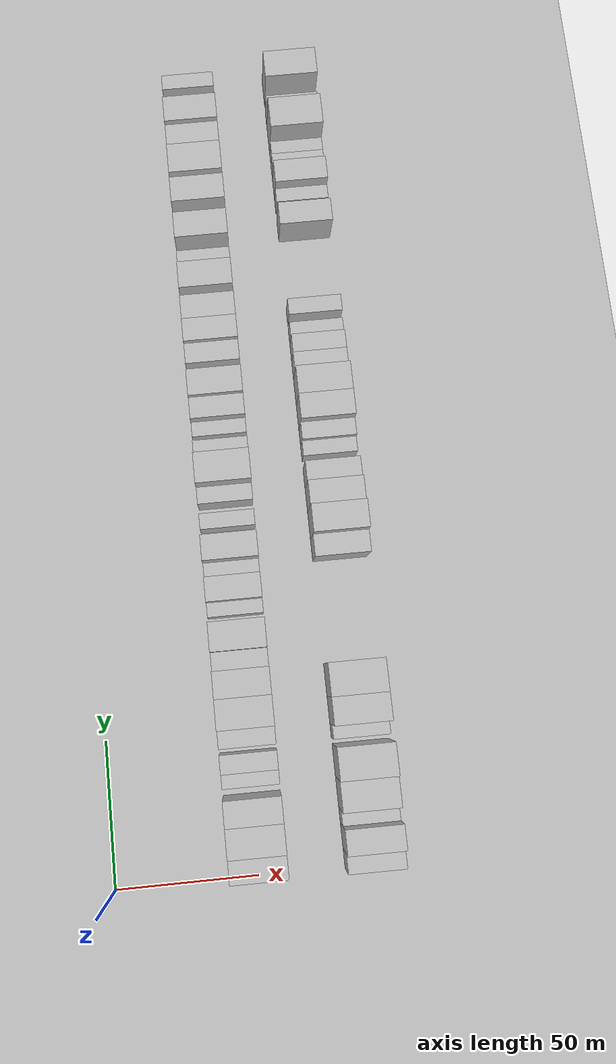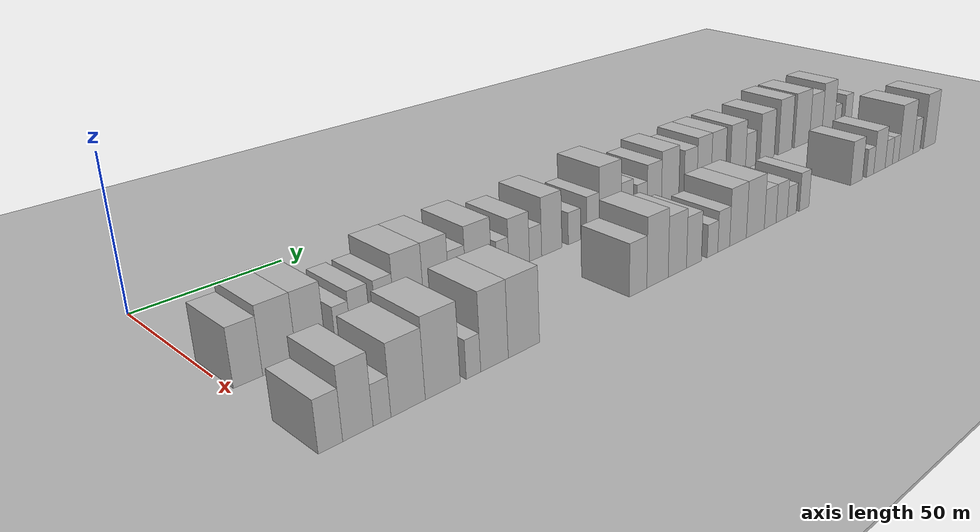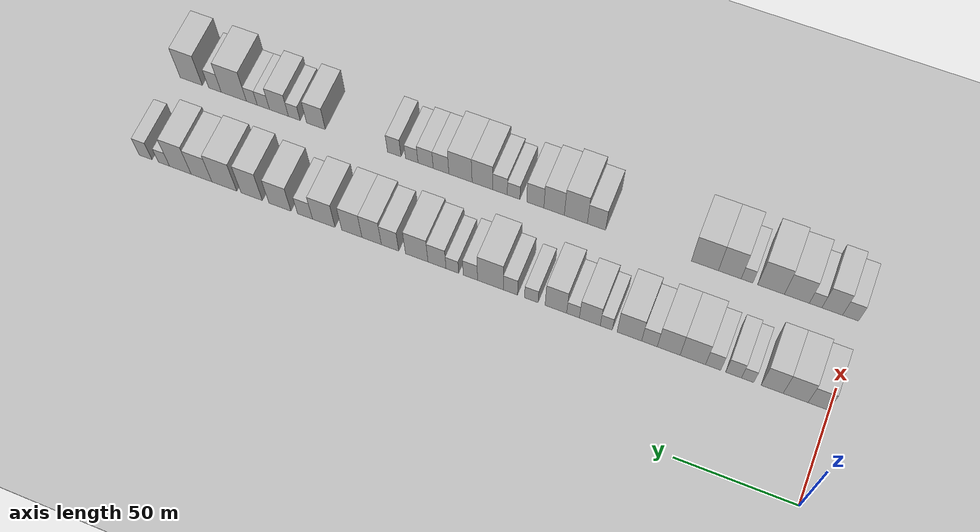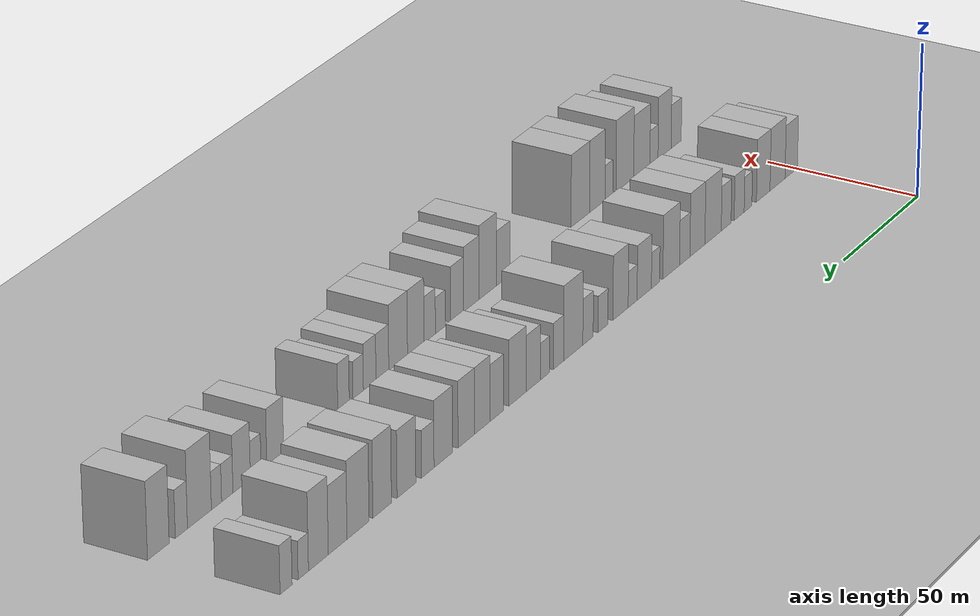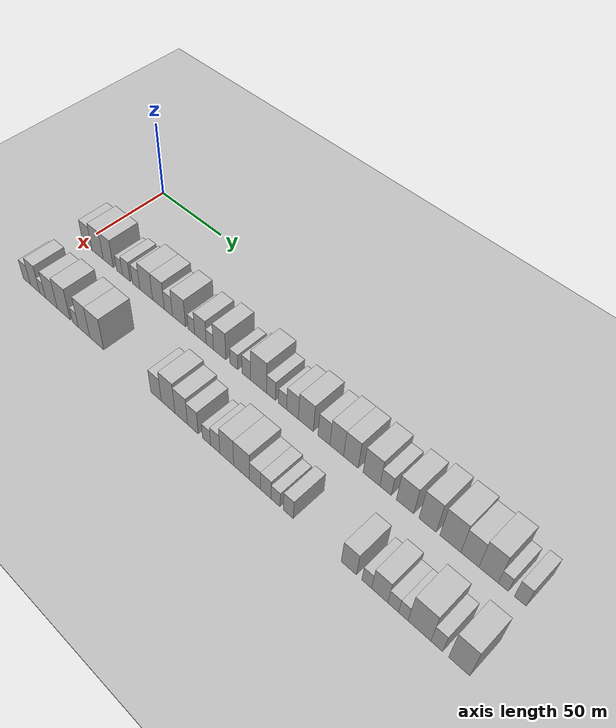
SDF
<sdf version="1.6">
 <world name="default">
  <include><name>ground_plane_1</name><uri>model://HANNAS_ground_plane</uri></include>
  <include>
   <name>ground_plane_2</name>
   <uri>model://HANNAS_ground_plane</uri>
   <pose>100 0 0  0 0 0</pose>
  </include>
  <model name="building_34">
   <static>1</static>
   <pose>50.0000 4.6034 0 0.000000 0.000000 0.000000</pose>
   <link name="link">
    <pose>0 0 9.00 0 0 0</pose>
    <collision name="collision"><geometry><box><size>20.0000 8.2765 18.0000</size></box></geometry></collision>
    <visual name="visual">
     <cast_shadows>0</cast_shadows>
     <geometry><box><size>20.0000 8.2765 18.0000</size></box></geometry>
     <material>
      <script>
       <uri>model://HANNAS_wall/materials/scripts</uri>
       <uri>model://HANNAS_wall/materials/textures</uri>
       <name>vrc/HANNAS_wall</name>
      </script>
     </material>
    </visual>
   </link>
  </model>
  <model name="building_35">
   <static>1</static>
   <pose>50.0000 13.7595 0 0.000000 0.000000 0.000000</pose>
   <link name="link">
    <pose>0 0 10.50 0 0 0</pose>
    <collision name="collision"><geometry><box><size>20.0000 10.0357 21.0000</size></box></geometry></collision>
    <visual name="visual">
     <cast_shadows>0</cast_shadows>
     <geometry><box><size>20.0000 10.0357 21.0000</size></box></geometry>
     <material>
      <script>
       <uri>model://HANNAS_wall/materials/scripts</uri>
       <uri>model://HANNAS_wall/materials/textures</uri>
       <name>vrc/HANNAS_wall</name>
      </script>
     </material>
    </visual>
   </link>
  </model>
  <model name="building_36">
   <static>1</static>
   <pose>50.0000 23.2460 0 0.000000 0.000000 0.000000</pose>
   <link name="link">
    <pose>0 0 10.50 0 0 0</pose>
    <collision name="collision"><geometry><box><size>20.0000 8.9372 21.0000</size></box></geometry></collision>
    <visual name="visual">
     <cast_shadows>0</cast_shadows>
     <geometry><box><size>20.0000 8.9372 21.0000</size></box></geometry>
     <material>
      <script>
       <uri>model://HANNAS_wall/materials/scripts</uri>
       <uri>model://HANNAS_wall/materials/textures</uri>
       <name>vrc/HANNAS_wall</name>
      </script>
     </material>
    </visual>
   </link>
  </model>
  <model name="building_37">
   <static>1</static>
   <pose>50.0000 33.2206 0 0.000000 0.000000 0.000000</pose>
   <link name="link">
    <pose>0 0 6.00 0 0 0</pose>
    <collision name="collision"><geometry><box><size>20.0000 5.0121 12.0000</size></box></geometry></collision>
    <visual name="visual">
     <cast_shadows>0</cast_shadows>
     <geometry><box><size>20.0000 5.0121 12.0000</size></box></geometry>
     <material>
      <script>
       <uri>model://HANNAS_wall/materials/scripts</uri>
       <uri>model://HANNAS_wall/materials/textures</uri>
       <name>vrc/HANNAS_wall</name>
      </script>
     </material>
    </visual>
   </link>
  </model>
  <model name="building_38">
   <static>1</static>
   <pose>50.0000 38.9742 0 0.000000 0.000000 0.000000</pose>
   <link name="link">
    <pose>0 0 7.50 0 0 0</pose>
    <collision name="collision"><geometry><box><size>20.0000 6.4951 15.0000</size></box></geometry></collision>
    <visual name="visual">
     <cast_shadows>0</cast_shadows>
     <geometry><box><size>20.0000 6.4951 15.0000</size></box></geometry>
     <material>
      <script>
       <uri>model://HANNAS_wall/materials/scripts</uri>
       <uri>model://HANNAS_wall/materials/textures</uri>
       <name>vrc/HANNAS_wall</name>
      </script>
     </material>
    </visual>
   </link>
  </model>
  <model name="building_39">
   <static>1</static>
   <pose>50.0000 47.3750 0 0.000000 0.000000 0.000000</pose>
   <link name="link">
    <pose>0 0 7.50 0 0 0</pose>
    <collision name="collision"><geometry><box><size>20.0000 6.3065 15.0000</size></box></geometry></collision>
    <visual name="visual">
     <cast_shadows>0</cast_shadows>
     <geometry><box><size>20.0000 6.3065 15.0000</size></box></geometry>
     <material>
      <script>
       <uri>model://HANNAS_wall/materials/scripts</uri>
       <uri>model://HANNAS_wall/materials/textures</uri>
       <name>vrc/HANNAS_wall</name>
      </script>
     </material>
    </visual>
   </link>
  </model>
  <model name="building_40">
   <static>1</static>
   <pose>50.0000 55.7754 0 0.000000 0.000000 0.000000</pose>
   <link name="link">
    <pose>0 0 10.50 0 0 0</pose>
    <collision name="collision"><geometry><box><size>20.0000 10.4942 21.0000</size></box></geometry></collision>
    <visual name="visual">
     <cast_shadows>0</cast_shadows>
     <geometry><box><size>20.0000 10.4942 21.0000</size></box></geometry>
     <material>
      <script>
       <uri>model://HANNAS_wall/materials/scripts</uri>
       <uri>model://HANNAS_wall/materials/textures</uri>
       <name>vrc/HANNAS_wall</name>
      </script>
     </material>
    </visual>
   </link>
  </model>
  <model name="building_41">
   <static>1</static>
   <pose>50.0000 65.7704 0 0.000000 0.000000 0.000000</pose>
   <link name="link">
    <pose>0 0 10.50 0 0 0</pose>
    <collision name="collision"><geometry><box><size>20.0000 9.4959 21.0000</size></box></geometry></collision>
    <visual name="visual">
     <cast_shadows>0</cast_shadows>
     <geometry><box><size>20.0000 9.4959 21.0000</size></box></geometry>
     <material>
      <script>
       <uri>model://HANNAS_wall/materials/scripts</uri>
       <uri>model://HANNAS_wall/materials/textures</uri>
       <name>vrc/HANNAS_wall</name>
      </script>
     </material>
    </visual>
   </link>
  </model>
  <model name="building_42">
   <static>1</static>
   <pose>50.0000 73.7756 0 0.000000 0.000000 0.000000</pose>
   <link name="link">
    <pose>0 0 7.50 0 0 0</pose>
    <collision name="collision"><geometry><box><size>20.0000 6.5145 15.0000</size></box></geometry></collision>
    <visual name="visual">
     <cast_shadows>0</cast_shadows>
     <geometry><box><size>20.0000 6.5145 15.0000</size></box></geometry>
     <material>
      <script>
       <uri>model://HANNAS_wall/materials/scripts</uri>
       <uri>model://HANNAS_wall/materials/textures</uri>
       <name>vrc/HANNAS_wall</name>
      </script>
     </material>
    </visual>
   </link>
  </model>
  <model name="building_43">
   <static>1</static>
   <pose>50.0000 82.2063 0 0.000000 0.000000 0.000000</pose>
   <link name="link">
    <pose>0 0 10.50 0 0 0</pose>
    <collision name="collision"><geometry><box><size>20.0000 10.3469 21.0000</size></box></geometry></collision>
    <visual name="visual">
     <cast_shadows>0</cast_shadows>
     <geometry><box><size>20.0000 10.3469 21.0000</size></box></geometry>
     <material>
      <script>
       <uri>model://HANNAS_wall/materials/scripts</uri>
       <uri>model://HANNAS_wall/materials/textures</uri>
       <name>vrc/HANNAS_wall</name>
      </script>
     </material>
    </visual>
   </link>
  </model>
  <model name="building_44">
   <static>1</static>
   <pose>50.0000 91.9267 0 0.000000 0.000000 0.000000</pose>
   <link name="link">
    <pose>0 0 6.00 0 0 0</pose>
    <collision name="collision"><geometry><box><size>20.0000 5.0939 12.0000</size></box></geometry></collision>
    <visual name="visual">
     <cast_shadows>0</cast_shadows>
     <geometry><box><size>20.0000 5.0939 12.0000</size></box></geometry>
     <material>
      <script>
       <uri>model://HANNAS_wall/materials/scripts</uri>
       <uri>model://HANNAS_wall/materials/textures</uri>
       <name>vrc/HANNAS_wall</name>
      </script>
     </material>
    </visual>
   </link>
  </model>
  <model name="building_45">
   <static>1</static>
   <pose>50.0000 98.8764 0 0.000000 0.000000 0.000000</pose>
   <link name="link">
    <pose>0 0 9.00 0 0 0</pose>
    <collision name="collision"><geometry><box><size>20.0000 8.8055 18.0000</size></box></geometry></collision>
    <visual name="visual">
     <cast_shadows>0</cast_shadows>
     <geometry><box><size>20.0000 8.8055 18.0000</size></box></geometry>
     <material>
      <script>
       <uri>model://HANNAS_wall/materials/scripts</uri>
       <uri>model://HANNAS_wall/materials/textures</uri>
       <name>vrc/HANNAS_wall</name>
      </script>
     </material>
    </visual>
   </link>
  </model>
  <model name="building_46">
   <static>1</static>
   <pose>50.0000 105.9861 0 0.000000 0.000000 0.000000</pose>
   <link name="link">
    <pose>0 0 6.00 0 0 0</pose>
    <collision name="collision"><geometry><box><size>20.0000 5.4139 12.0000</size></box></geometry></collision>
    <visual name="visual">
     <cast_shadows>0</cast_shadows>
     <geometry><box><size>20.0000 5.4139 12.0000</size></box></geometry>
     <material>
      <script>
       <uri>model://HANNAS_wall/materials/scripts</uri>
       <uri>model://HANNAS_wall/materials/textures</uri>
       <name>vrc/HANNAS_wall</name>
      </script>
     </material>
    </visual>
   </link>
  </model>
  <model name="building_47">
   <static>1</static>
   <pose>50.0000 113.2934 0 0.000000 0.000000 0.000000</pose>
   <link name="link">
    <pose>0 0 10.50 0 0 0</pose>
    <collision name="collision"><geometry><box><size>20.0000 9.2007 21.0000</size></box></geometry></collision>
    <visual name="visual">
     <cast_shadows>0</cast_shadows>
     <geometry><box><size>20.0000 9.2007 21.0000</size></box></geometry>
     <material>
      <script>
       <uri>model://HANNAS_wall/materials/scripts</uri>
       <uri>model://HANNAS_wall/materials/textures</uri>
       <name>vrc/HANNAS_wall</name>
      </script>
     </material>
    </visual>
   </link>
  </model>
  <model name="building_48">
   <static>1</static>
   <pose>50.0000 123.7985 0 0.000000 0.000000 0.000000</pose>
   <link name="link">
    <pose>0 0 6.00 0 0 0</pose>
    <collision name="collision"><geometry><box><size>20.0000 5.8095 12.0000</size></box></geometry></collision>
    <visual name="visual">
     <cast_shadows>0</cast_shadows>
     <geometry><box><size>20.0000 5.8095 12.0000</size></box></geometry>
     <material>
      <script>
       <uri>model://HANNAS_wall/materials/scripts</uri>
       <uri>model://HANNAS_wall/materials/textures</uri>
       <name>vrc/HANNAS_wall</name>
      </script>
     </material>
    </visual>
   </link>
  </model>
  <model name="building_49">
   <static>1</static>
   <pose>50.0000 132.7728 0 0.000000 0.000000 0.000000</pose>
   <link name="link">
    <pose>0 0 7.50 0 0 0</pose>
    <collision name="collision"><geometry><box><size>20.0000 6.1389 15.0000</size></box></geometry></collision>
    <visual name="visual">
     <cast_shadows>0</cast_shadows>
     <geometry><box><size>20.0000 6.1389 15.0000</size></box></geometry>
     <material>
      <script>
       <uri>model://HANNAS_wall/materials/scripts</uri>
       <uri>model://HANNAS_wall/materials/textures</uri>
       <name>vrc/HANNAS_wall</name>
      </script>
     </material>
    </visual>
   </link>
  </model>
  <model name="building_50">
   <static>1</static>
   <pose>50.0000 141.4170 0 0.000000 0.000000 0.000000</pose>
   <link name="link">
    <pose>0 0 12.00 0 0 0</pose>
    <collision name="collision"><geometry><box><size>20.0000 11.1495 24.0000</size></box></geometry></collision>
    <visual name="visual">
     <cast_shadows>0</cast_shadows>
     <geometry><box><size>20.0000 11.1495 24.0000</size></box></geometry>
     <material>
      <script>
       <uri>model://HANNAS_wall/materials/scripts</uri>
       <uri>model://HANNAS_wall/materials/textures</uri>
       <name>vrc/HANNAS_wall</name>
      </script>
     </material>
    </visual>
   </link>
  </model>
  <model name="building_51">
   <static>1</static>
   <pose>50.0000 150.1050 0 0.000000 0.000000 0.000000</pose>
   <link name="link">
    <pose>0 0 7.50 0 0 0</pose>
    <collision name="collision"><geometry><box><size>20.0000 6.2265 15.0000</size></box></geometry></collision>
    <visual name="visual">
     <cast_shadows>0</cast_shadows>
     <geometry><box><size>20.0000 6.2265 15.0000</size></box></geometry>
     <material>
      <script>
       <uri>model://HANNAS_wall/materials/scripts</uri>
       <uri>model://HANNAS_wall/materials/textures</uri>
       <name>vrc/HANNAS_wall</name>
      </script>
     </material>
    </visual>
   </link>
  </model>
  <model name="building_52">
   <static>1</static>
   <pose>50.0000 157.9779 0 0.000000 0.000000 0.000000</pose>
   <link name="link">
    <pose>0 0 6.00 0 0 0</pose>
    <collision name="collision"><geometry><box><size>20.0000 5.5194 12.0000</size></box></geometry></collision>
    <visual name="visual">
     <cast_shadows>0</cast_shadows>
     <geometry><box><size>20.0000 5.5194 12.0000</size></box></geometry>
     <material>
      <script>
       <uri>model://HANNAS_wall/materials/scripts</uri>
       <uri>model://HANNAS_wall/materials/textures</uri>
       <name>vrc/HANNAS_wall</name>
      </script>
     </material>
    </visual>
   </link>
  </model>
  <model name="building_53">
   <static>1</static>
   <pose>50.0000 164.7002 0 0.000000 0.000000 0.000000</pose>
   <link name="link">
    <pose>0 0 9.00 0 0 0</pose>
    <collision name="collision"><geometry><box><size>20.0000 7.9251 18.0000</size></box></geometry></collision>
    <visual name="visual">
     <cast_shadows>0</cast_shadows>
     <geometry><box><size>20.0000 7.9251 18.0000</size></box></geometry>
     <material>
      <script>
       <uri>model://HANNAS_wall/materials/scripts</uri>
       <uri>model://HANNAS_wall/materials/textures</uri>
       <name>vrc/HANNAS_wall</name>
      </script>
     </material>
    </visual>
   </link>
  </model>
  <model name="building_54">
   <static>1</static>
   <pose>50.0000 173.6147 0 0.000000 0.000000 0.000000</pose>
   <link name="link">
    <pose>0 0 10.50 0 0 0</pose>
    <collision name="collision"><geometry><box><size>20.0000 9.9040 21.0000</size></box></geometry></collision>
    <visual name="visual">
     <cast_shadows>0</cast_shadows>
     <geometry><box><size>20.0000 9.9040 21.0000</size></box></geometry>
     <material>
      <script>
       <uri>model://HANNAS_wall/materials/scripts</uri>
       <uri>model://HANNAS_wall/materials/textures</uri>
       <name>vrc/HANNAS_wall</name>
      </script>
     </material>
    </visual>
   </link>
  </model>
  <model name="building_55">
   <static>1</static>
   <pose>50.0000 185.4080 0 0.000000 0.000000 0.000000</pose>
   <link name="link">
    <pose>0 0 9.00 0 0 0</pose>
    <collision name="collision"><geometry><box><size>20.0000 7.6825 18.0000</size></box></geometry></collision>
    <visual name="visual">
     <cast_shadows>0</cast_shadows>
     <geometry><box><size>20.0000 7.6825 18.0000</size></box></geometry>
     <material>
      <script>
       <uri>model://HANNAS_wall/materials/scripts</uri>
       <uri>model://HANNAS_wall/materials/textures</uri>
       <name>vrc/HANNAS_wall</name>
      </script>
     </material>
    </visual>
   </link>
  </model>
  <model name="building_56">
   <static>1</static>
   <pose>50.0000 193.5839 0 0.000000 0.000000 0.000000</pose>
   <link name="link">
    <pose>0 0 10.50 0 0 0</pose>
    <collision name="collision"><geometry><box><size>20.0000 8.6694 21.0000</size></box></geometry></collision>
    <visual name="visual">
     <cast_shadows>0</cast_shadows>
     <geometry><box><size>20.0000 8.6694 21.0000</size></box></geometry>
     <material>
      <script>
       <uri>model://HANNAS_wall/materials/scripts</uri>
       <uri>model://HANNAS_wall/materials/textures</uri>
       <name>vrc/HANNAS_wall</name>
      </script>
     </material>
    </visual>
   </link>
  </model>
  <model name="building_57">
   <static>1</static>
   <pose>50.0000 202.4442 0 0.000000 0.000000 0.000000</pose>
   <link name="link">
    <pose>0 0 10.50 0 0 0</pose>
    <collision name="collision"><geometry><box><size>20.0000 9.0514 21.0000</size></box></geometry></collision>
    <visual name="visual">
     <cast_shadows>0</cast_shadows>
     <geometry><box><size>20.0000 9.0514 21.0000</size></box></geometry>
     <material>
      <script>
       <uri>model://HANNAS_wall/materials/scripts</uri>
       <uri>model://HANNAS_wall/materials/textures</uri>
       <name>vrc/HANNAS_wall</name>
      </script>
     </material>
    </visual>
   </link>
  </model>
  <model name="building_58">
   <static>1</static>
   <pose>50.0000 215.0470 0 0.000000 0.000000 0.000000</pose>
   <link name="link">
    <pose>0 0 10.50 0 0 0</pose>
    <collision name="collision"><geometry><box><size>20.0000 10.1541 21.0000</size></box></geometry></collision>
    <visual name="visual">
     <cast_shadows>0</cast_shadows>
     <geometry><box><size>20.0000 10.1541 21.0000</size></box></geometry>
     <material>
      <script>
       <uri>model://HANNAS_wall/materials/scripts</uri>
       <uri>model://HANNAS_wall/materials/textures</uri>
       <name>vrc/HANNAS_wall</name>
      </script>
     </material>
    </visual>
   </link>
  </model>
  <model name="building_59">
   <static>1</static>
   <pose>50.0000 223.5183 0 0.000000 0.000000 0.000000</pose>
   <link name="link">
    <pose>0 0 7.50 0 0 0</pose>
    <collision name="collision"><geometry><box><size>20.0000 6.7885 15.0000</size></box></geometry></collision>
    <visual name="visual">
     <cast_shadows>0</cast_shadows>
     <geometry><box><size>20.0000 6.7885 15.0000</size></box></geometry>
     <material>
      <script>
       <uri>model://HANNAS_wall/materials/scripts</uri>
       <uri>model://HANNAS_wall/materials/textures</uri>
       <name>vrc/HANNAS_wall</name>
      </script>
     </material>
    </visual>
   </link>
  </model>
  <model name="building_60">
   <static>1</static>
   <pose>50.0000 234.9215 0 0.000000 0.000000 0.000000</pose>
   <link name="link">
    <pose>0 0 10.50 0 0 0</pose>
    <collision name="collision"><geometry><box><size>20.0000 10.0179 21.0000</size></box></geometry></collision>
    <visual name="visual">
     <cast_shadows>0</cast_shadows>
     <geometry><box><size>20.0000 10.0179 21.0000</size></box></geometry>
     <material>
      <script>
       <uri>model://HANNAS_wall/materials/scripts</uri>
       <uri>model://HANNAS_wall/materials/textures</uri>
       <name>vrc/HANNAS_wall</name>
      </script>
     </material>
    </visual>
   </link>
  </model>
  <model name="building_61">
   <static>1</static>
   <pose>50.0000 247.8155 0 0.000000 0.000000 0.000000</pose>
   <link name="link">
    <pose>0 0 12.00 0 0 0</pose>
    <collision name="collision"><geometry><box><size>20.0000 9.7701 24.0000</size></box></geometry></collision>
    <visual name="visual">
     <cast_shadows>0</cast_shadows>
     <geometry><box><size>20.0000 9.7701 24.0000</size></box></geometry>
     <material>
      <script>
       <uri>model://HANNAS_wall/materials/scripts</uri>
       <uri>model://HANNAS_wall/materials/textures</uri>
       <name>vrc/HANNAS_wall</name>
      </script>
     </material>
    </visual>
   </link>
  </model>
  <model name="building_62">
   <static>1</static>
   <pose>50.0000 260.4190 0 0.000000 0.000000 0.000000</pose>
   <link name="link">
    <pose>0 0 12.00 0 0 0</pose>
    <collision name="collision"><geometry><box><size>20.0000 11.4369 24.0000</size></box></geometry></collision>
    <visual name="visual">
     <cast_shadows>0</cast_shadows>
     <geometry><box><size>20.0000 11.4369 24.0000</size></box></geometry>
     <material>
      <script>
       <uri>model://HANNAS_wall/materials/scripts</uri>
       <uri>model://HANNAS_wall/materials/textures</uri>
       <name>vrc/HANNAS_wall</name>
      </script>
     </material>
    </visual>
   </link>
  </model>
  <model name="building_63">
   <static>1</static>
   <pose>50.0000 270.9623 0 0.000000 0.000000 0.000000</pose>
   <link name="link">
    <pose>0 0 10.50 0 0 0</pose>
    <collision name="collision"><geometry><box><size>20.0000 9.6496 21.0000</size></box></geometry></collision>
    <visual name="visual">
     <cast_shadows>0</cast_shadows>
     <geometry><box><size>20.0000 9.6496 21.0000</size></box></geometry>
     <material>
      <script>
       <uri>model://HANNAS_wall/materials/scripts</uri>
       <uri>model://HANNAS_wall/materials/textures</uri>
       <name>vrc/HANNAS_wall</name>
      </script>
     </material>
    </visual>
   </link>
  </model>
  <model name="building_64">
   <static>1</static>
   <pose>50.0000 280.8365 0 0.000000 0.000000 0.000000</pose>
   <link name="link">
    <pose>0 0 12.00 0 0 0</pose>
    <collision name="collision"><geometry><box><size>20.0000 10.0986 24.0000</size></box></geometry></collision>
    <visual name="visual">
     <cast_shadows>0</cast_shadows>
     <geometry><box><size>20.0000 10.0986 24.0000</size></box></geometry>
     <material>
      <script>
       <uri>model://HANNAS_wall/materials/scripts</uri>
       <uri>model://HANNAS_wall/materials/textures</uri>
       <name>vrc/HANNAS_wall</name>
      </script>
     </material>
    </visual>
   </link>
  </model>
  <model name="building_65">
   <static>1</static>
   <pose>50.0000 288.4983 0 0.000000 0.000000 0.000000</pose>
   <link name="link">
    <pose>0 0 6.00 0 0 0</pose>
    <collision name="collision"><geometry><box><size>20.0000 5.2250 12.0000</size></box></geometry></collision>
    <visual name="visual">
     <cast_shadows>0</cast_shadows>
     <geometry><box><size>20.0000 5.2250 12.0000</size></box></geometry>
     <material>
      <script>
       <uri>model://HANNAS_wall/materials/scripts</uri>
       <uri>model://HANNAS_wall/materials/textures</uri>
       <name>vrc/HANNAS_wall</name>
      </script>
     </material>
    </visual>
   </link>
  </model>
  <model name="building_66">
   <static>1</static>
   <pose>50.0000 297.1267 0 0.000000 0.000000 0.000000</pose>
   <link name="link">
    <pose>0 0 7.50 0 0 0</pose>
    <collision name="collision"><geometry><box><size>20.0000 6.0318 15.0000</size></box></geometry></collision>
    <visual name="visual">
     <cast_shadows>0</cast_shadows>
     <geometry><box><size>20.0000 6.0318 15.0000</size></box></geometry>
     <material>
      <script>
       <uri>model://HANNAS_wall/materials/scripts</uri>
       <uri>model://HANNAS_wall/materials/textures</uri>
       <name>vrc/HANNAS_wall</name>
      </script>
     </material>
    </visual>
   </link>
  </model>
  <model name="building_96">
   <static>1</static>
   <pose>90.0000 3.0714 0 0.000000 0.000000 0.000000</pose>
   <link name="link">
    <pose>0 0 7.50 0 0 0</pose>
    <collision name="collision"><geometry><box><size>20.0000 6.6131 15.0000</size></box></geometry></collision>
    <visual name="visual">
     <cast_shadows>0</cast_shadows>
     <geometry><box><size>20.0000 6.6131 15.0000</size></box></geometry>
     <material>
      <script>
       <uri>model://HANNAS_wall/materials/scripts</uri>
       <uri>model://HANNAS_wall/materials/textures</uri>
       <name>vrc/HANNAS_wall</name>
      </script>
     </material>
    </visual>
   </link>
  </model>
  <model name="building_97">
   <static>1</static>
   <pose>90.0000 10.6447 0 0.000000 0.000000 0.000000</pose>
   <link name="link">
    <pose>0 0 10.50 0 0 0</pose>
    <collision name="collision"><geometry><box><size>20.0000 8.5336 21.0000</size></box></geometry></collision>
    <visual name="visual">
     <cast_shadows>0</cast_shadows>
     <geometry><box><size>20.0000 8.5336 21.0000</size></box></geometry>
     <material>
      <script>
       <uri>model://HANNAS_wall/materials/scripts</uri>
       <uri>model://HANNAS_wall/materials/textures</uri>
       <name>vrc/HANNAS_wall</name>
      </script>
     </material>
    </visual>
   </link>
  </model>
  <model name="building_98">
   <static>1</static>
   <pose>90.0000 17.5140 0 0.000000 0.000000 0.000000</pose>
   <link name="link">
    <pose>0 0 6.00 0 0 0</pose>
    <collision name="collision"><geometry><box><size>20.0000 5.2049 12.0000</size></box></geometry></collision>
    <visual name="visual">
     <cast_shadows>0</cast_shadows>
     <geometry><box><size>20.0000 5.2049 12.0000</size></box></geometry>
     <material>
      <script>
       <uri>model://HANNAS_wall/materials/scripts</uri>
       <uri>model://HANNAS_wall/materials/textures</uri>
       <name>vrc/HANNAS_wall</name>
      </script>
     </material>
    </visual>
   </link>
  </model>
  <model name="building_99">
   <static>1</static>
   <pose>90.0000 25.3241 0 0.000000 0.000000 0.000000</pose>
   <link name="link">
    <pose>0 0 10.50 0 0 0</pose>
    <collision name="collision"><geometry><box><size>20.0000 10.4154 21.0000</size></box></geometry></collision>
    <visual name="visual">
     <cast_shadows>0</cast_shadows>
     <geometry><box><size>20.0000 10.4154 21.0000</size></box></geometry>
     <material>
      <script>
       <uri>model://HANNAS_wall/materials/scripts</uri>
       <uri>model://HANNAS_wall/materials/textures</uri>
       <name>vrc/HANNAS_wall</name>
      </script>
     </material>
    </visual>
   </link>
  </model>
  <model name="building_100">
   <static>1</static>
   <pose>90.0000 36.1320 0 0.000000 0.000000 0.000000</pose>
   <link name="link">
    <pose>0 0 12.00 0 0 0</pose>
    <collision name="collision"><geometry><box><size>20.0000 11.2005 24.0000</size></box></geometry></collision>
    <visual name="visual">
     <cast_shadows>0</cast_shadows>
     <geometry><box><size>20.0000 11.2005 24.0000</size></box></geometry>
     <material>
      <script>
       <uri>model://HANNAS_wall/materials/scripts</uri>
       <uri>model://HANNAS_wall/materials/textures</uri>
       <name>vrc/HANNAS_wall</name>
      </script>
     </material>
    </visual>
   </link>
  </model>
  <model name="building_101">
   <static>1</static>
   <pose>90.0000 46.1917 0 0.000000 0.000000 0.000000</pose>
   <link name="link">
    <pose>0 0 6.00 0 0 0</pose>
    <collision name="collision"><geometry><box><size>20.0000 4.9187 12.0000</size></box></geometry></collision>
    <visual name="visual">
     <cast_shadows>0</cast_shadows>
     <geometry><box><size>20.0000 4.9187 12.0000</size></box></geometry>
     <material>
      <script>
       <uri>model://HANNAS_wall/materials/scripts</uri>
       <uri>model://HANNAS_wall/materials/textures</uri>
       <name>vrc/HANNAS_wall</name>
      </script>
     </material>
    </visual>
   </link>
  </model>
  <model name="building_102">
   <static>1</static>
   <pose>90.0000 53.4620 0 0.000000 0.000000 0.000000</pose>
   <link name="link">
    <pose>0 0 12.00 0 0 0</pose>
    <collision name="collision"><geometry><box><size>20.0000 9.6219 24.0000</size></box></geometry></collision>
    <visual name="visual">
     <cast_shadows>0</cast_shadows>
     <geometry><box><size>20.0000 9.6219 24.0000</size></box></geometry>
     <material>
      <script>
       <uri>model://HANNAS_wall/materials/scripts</uri>
       <uri>model://HANNAS_wall/materials/textures</uri>
       <name>vrc/HANNAS_wall</name>
      </script>
     </material>
    </visual>
   </link>
  </model>
  <model name="building_103">
   <static>1</static>
   <pose>90.0000 64.0214 0 0.000000 0.000000 0.000000</pose>
   <link name="link">
    <pose>0 0 12.00 0 0 0</pose>
    <collision name="collision"><geometry><box><size>20.0000 11.4970 24.0000</size></box></geometry></collision>
    <visual name="visual">
     <cast_shadows>0</cast_shadows>
     <geometry><box><size>20.0000 11.4970 24.0000</size></box></geometry>
     <material>
      <script>
       <uri>model://HANNAS_wall/materials/scripts</uri>
       <uri>model://HANNAS_wall/materials/textures</uri>
       <name>vrc/HANNAS_wall</name>
      </script>
     </material>
    </visual>
   </link>
  </model>
  <model name="building_104">
   <static>1</static>
   <pose>90.0000 110.7248 0 0.000000 0.000000 0.000000</pose>
   <link name="link">
    <pose>0 0 9.00 0 0 0</pose>
    <collision name="collision"><geometry><box><size>20.0000 7.9699 18.0000</size></box></geometry></collision>
    <visual name="visual">
     <cast_shadows>0</cast_shadows>
     <geometry><box><size>20.0000 7.9699 18.0000</size></box></geometry>
     <material>
      <script>
       <uri>model://HANNAS_wall/materials/scripts</uri>
       <uri>model://HANNAS_wall/materials/textures</uri>
       <name>vrc/HANNAS_wall</name>
      </script>
     </material>
    </visual>
   </link>
  </model>
  <model name="building_105">
   <static>1</static>
   <pose>90.0000 119.7504 0 0.000000 0.000000 0.000000</pose>
   <link name="link">
    <pose>0 0 12.00 0 0 0</pose>
    <collision name="collision"><geometry><box><size>20.0000 10.0813 24.0000</size></box></geometry></collision>
    <visual name="visual">
     <cast_shadows>0</cast_shadows>
     <geometry><box><size>20.0000 10.0813 24.0000</size></box></geometry>
     <material>
      <script>
       <uri>model://HANNAS_wall/materials/scripts</uri>
       <uri>model://HANNAS_wall/materials/textures</uri>
       <name>vrc/HANNAS_wall</name>
      </script>
     </material>
    </visual>
   </link>
  </model>
  <model name="building_106">
   <static>1</static>
   <pose>90.0000 129.2866 0 0.000000 0.000000 0.000000</pose>
   <link name="link">
    <pose>0 0 10.50 0 0 0</pose>
    <collision name="collision"><geometry><box><size>20.0000 8.9911 21.0000</size></box></geometry></collision>
    <visual name="visual">
     <cast_shadows>0</cast_shadows>
     <geometry><box><size>20.0000 8.9911 21.0000</size></box></geometry>
     <material>
      <script>
       <uri>model://HANNAS_wall/materials/scripts</uri>
       <uri>model://HANNAS_wall/materials/textures</uri>
       <name>vrc/HANNAS_wall</name>
      </script>
     </material>
    </visual>
   </link>
  </model>
  <model name="building_107">
   <static>1</static>
   <pose>90.0000 137.5861 0 0.000000 0.000000 0.000000</pose>
   <link name="link">
    <pose>0 0 9.00 0 0 0</pose>
    <collision name="collision"><geometry><box><size>20.0000 7.6078 18.0000</size></box></geometry></collision>
    <visual name="visual">
     <cast_shadows>0</cast_shadows>
     <geometry><box><size>20.0000 7.6078 18.0000</size></box></geometry>
     <material>
      <script>
       <uri>model://HANNAS_wall/materials/scripts</uri>
       <uri>model://HANNAS_wall/materials/textures</uri>
       <name>vrc/HANNAS_wall</name>
      </script>
     </material>
    </visual>
   </link>
  </model>
  <model name="building_108">
   <static>1</static>
   <pose>90.0000 147.1910 0 0.000000 0.000000 0.000000</pose>
   <link name="link">
    <pose>0 0 6.00 0 0 0</pose>
    <collision name="collision"><geometry><box><size>20.0000 5.6019 12.0000</size></box></geometry></collision>
    <visual name="visual">
     <cast_shadows>0</cast_shadows>
     <geometry><box><size>20.0000 5.6019 12.0000</size></box></geometry>
     <material>
      <script>
       <uri>model://HANNAS_wall/materials/scripts</uri>
       <uri>model://HANNAS_wall/materials/textures</uri>
       <name>vrc/HANNAS_wall</name>
      </script>
     </material>
    </visual>
   </link>
  </model>
  <model name="building_109">
   <static>1</static>
   <pose>90.0000 153.1975 0 0.000000 0.000000 0.000000</pose>
   <link name="link">
    <pose>0 0 7.50 0 0 0</pose>
    <collision name="collision"><geometry><box><size>20.0000 6.4112 15.0000</size></box></geometry></collision>
    <visual name="visual">
     <cast_shadows>0</cast_shadows>
     <geometry><box><size>20.0000 6.4112 15.0000</size></box></geometry>
     <material>
      <script>
       <uri>model://HANNAS_wall/materials/scripts</uri>
       <uri>model://HANNAS_wall/materials/textures</uri>
       <name>vrc/HANNAS_wall</name>
      </script>
     </material>
    </visual>
   </link>
  </model>
  <model name="building_110">
   <static>1</static>
   <pose>90.0000 161.0781 0 0.000000 0.000000 0.000000</pose>
   <link name="link">
    <pose>0 0 10.50 0 0 0</pose>
    <collision name="collision"><geometry><box><size>20.0000 9.3500 21.0000</size></box></geometry></collision>
    <visual name="visual">
     <cast_shadows>0</cast_shadows>
     <geometry><box><size>20.0000 9.3500 21.0000</size></box></geometry>
     <material>
      <script>
       <uri>model://HANNAS_wall/materials/scripts</uri>
       <uri>model://HANNAS_wall/materials/textures</uri>
       <name>vrc/HANNAS_wall</name>
      </script>
     </material>
    </visual>
   </link>
  </model>
  <model name="building_111">
   <static>1</static>
   <pose>90.0000 170.9711 0 0.000000 0.000000 0.000000</pose>
   <link name="link">
    <pose>0 0 10.50 0 0 0</pose>
    <collision name="collision"><geometry><box><size>20.0000 10.4360 21.0000</size></box></geometry></collision>
    <visual name="visual">
     <cast_shadows>0</cast_shadows>
     <geometry><box><size>20.0000 10.4360 21.0000</size></box></geometry>
     <material>
      <script>
       <uri>model://HANNAS_wall/materials/scripts</uri>
       <uri>model://HANNAS_wall/materials/textures</uri>
       <name>vrc/HANNAS_wall</name>
      </script>
     </material>
    </visual>
   </link>
  </model>
  <model name="building_112">
   <static>1</static>
   <pose>90.0000 179.7138 0 0.000000 0.000000 0.000000</pose>
   <link name="link">
    <pose>0 0 7.50 0 0 0</pose>
    <collision name="collision"><geometry><box><size>20.0000 7.0495 15.0000</size></box></geometry></collision>
    <visual name="visual">
     <cast_shadows>0</cast_shadows>
     <geometry><box><size>20.0000 7.0495 15.0000</size></box></geometry>
     <material>
      <script>
       <uri>model://HANNAS_wall/materials/scripts</uri>
       <uri>model://HANNAS_wall/materials/textures</uri>
       <name>vrc/HANNAS_wall</name>
      </script>
     </material>
    </visual>
   </link>
  </model>
  <model name="building_113">
   <static>1</static>
   <pose>90.0000 186.7007 0 0.000000 0.000000 0.000000</pose>
   <link name="link">
    <pose>0 0 7.50 0 0 0</pose>
    <collision name="collision"><geometry><box><size>20.0000 6.9242 15.0000</size></box></geometry></collision>
    <visual name="visual">
     <cast_shadows>0</cast_shadows>
     <geometry><box><size>20.0000 6.9242 15.0000</size></box></geometry>
     <material>
      <script>
       <uri>model://HANNAS_wall/materials/scripts</uri>
       <uri>model://HANNAS_wall/materials/textures</uri>
       <name>vrc/HANNAS_wall</name>
      </script>
     </material>
    </visual>
   </link>
  </model>
  <model name="building_114">
   <static>1</static>
   <pose>90.0000 193.0042 0 0.000000 0.000000 0.000000</pose>
   <link name="link">
    <pose>0 0 6.00 0 0 0</pose>
    <collision name="collision"><geometry><box><size>20.0000 5.6827 12.0000</size></box></geometry></collision>
    <visual name="visual">
     <cast_shadows>0</cast_shadows>
     <geometry><box><size>20.0000 5.6827 12.0000</size></box></geometry>
     <material>
      <script>
       <uri>model://HANNAS_wall/materials/scripts</uri>
       <uri>model://HANNAS_wall/materials/textures</uri>
       <name>vrc/HANNAS_wall</name>
      </script>
     </material>
    </visual>
   </link>
  </model>
  <model name="building_115">
   <static>1</static>
   <pose>90.0000 200.9515 0 0.000000 0.000000 0.000000</pose>
   <link name="link">
    <pose>0 0 7.50 0 0 0</pose>
    <collision name="collision"><geometry><box><size>20.0000 6.2119 15.0000</size></box></geometry></collision>
    <visual name="visual">
     <cast_shadows>0</cast_shadows>
     <geometry><box><size>20.0000 6.2119 15.0000</size></box></geometry>
     <material>
      <script>
       <uri>model://HANNAS_wall/materials/scripts</uri>
       <uri>model://HANNAS_wall/materials/textures</uri>
       <name>vrc/HANNAS_wall</name>
      </script>
     </material>
    </visual>
   </link>
  </model>
  <model name="building_116">
   <static>1</static>
   <pose>90.0000 237.1488 0 0.000000 0.000000 0.000000</pose>
   <link name="link">
    <pose>0 0 9.00 0 0 0</pose>
    <collision name="collision"><geometry><box><size>20.0000 8.7276 18.0000</size></box></geometry></collision>
    <visual name="visual">
     <cast_shadows>0</cast_shadows>
     <geometry><box><size>20.0000 8.7276 18.0000</size></box></geometry>
     <material>
      <script>
       <uri>model://HANNAS_wall/materials/scripts</uri>
       <uri>model://HANNAS_wall/materials/textures</uri>
       <name>vrc/HANNAS_wall</name>
      </script>
     </material>
    </visual>
   </link>
  </model>
  <model name="building_117">
   <static>1</static>
   <pose>90.0000 247.2572 0 0.000000 0.000000 0.000000</pose>
   <link name="link">
    <pose>0 0 6.00 0 0 0</pose>
    <collision name="collision"><geometry><box><size>20.0000 5.4892 12.0000</size></box></geometry></collision>
    <visual name="visual">
     <cast_shadows>0</cast_shadows>
     <geometry><box><size>20.0000 5.4892 12.0000</size></box></geometry>
     <material>
      <script>
       <uri>model://HANNAS_wall/materials/scripts</uri>
       <uri>model://HANNAS_wall/materials/textures</uri>
       <name>vrc/HANNAS_wall</name>
      </script>
     </material>
    </visual>
   </link>
  </model>
  <model name="building_118">
   <static>1</static>
   <pose>90.0000 254.4431 0 0.000000 0.000000 0.000000</pose>
   <link name="link">
    <pose>0 0 9.00 0 0 0</pose>
    <collision name="collision"><geometry><box><size>20.0000 8.8826 18.0000</size></box></geometry></collision>
    <visual name="visual">
     <cast_shadows>0</cast_shadows>
     <geometry><box><size>20.0000 8.8826 18.0000</size></box></geometry>
     <material>
      <script>
       <uri>model://HANNAS_wall/materials/scripts</uri>
       <uri>model://HANNAS_wall/materials/textures</uri>
       <name>vrc/HANNAS_wall</name>
      </script>
     </material>
    </visual>
   </link>
  </model>
  <model name="building_119">
   <static>1</static>
   <pose>90.0000 261.7821 0 0.000000 0.000000 0.000000</pose>
   <link name="link">
    <pose>0 0 6.00 0 0 0</pose>
    <collision name="collision"><geometry><box><size>20.0000 5.7954 12.0000</size></box></geometry></collision>
    <visual name="visual">
     <cast_shadows>0</cast_shadows>
     <geometry><box><size>20.0000 5.7954 12.0000</size></box></geometry>
     <material>
      <script>
       <uri>model://HANNAS_wall/materials/scripts</uri>
       <uri>model://HANNAS_wall/materials/textures</uri>
       <name>vrc/HANNAS_wall</name>
      </script>
     </material>
    </visual>
   </link>
  </model>
  <model name="building_120">
   <static>1</static>
   <pose>90.0000 267.2435 0 0.000000 0.000000 0.000000</pose>
   <link name="link">
    <pose>0 0 6.00 0 0 0</pose>
    <collision name="collision"><geometry><box><size>20.0000 5.1274 12.0000</size></box></geometry></collision>
    <visual name="visual">
     <cast_shadows>0</cast_shadows>
     <geometry><box><size>20.0000 5.1274 12.0000</size></box></geometry>
     <material>
      <script>
       <uri>model://HANNAS_wall/materials/scripts</uri>
       <uri>model://HANNAS_wall/materials/textures</uri>
       <name>vrc/HANNAS_wall</name>
      </script>
     </material>
    </visual>
   </link>
  </model>
  <model name="building_121">
   <static>1</static>
   <pose>90.0000 275.7798 0 0.000000 0.000000 0.000000</pose>
   <link name="link">
    <pose>0 0 12.00 0 0 0</pose>
    <collision name="collision"><geometry><box><size>20.0000 11.9453 24.0000</size></box></geometry></collision>
    <visual name="visual">
     <cast_shadows>0</cast_shadows>
     <geometry><box><size>20.0000 11.9453 24.0000</size></box></geometry>
     <material>
      <script>
       <uri>model://HANNAS_wall/materials/scripts</uri>
       <uri>model://HANNAS_wall/materials/textures</uri>
       <name>vrc/HANNAS_wall</name>
      </script>
     </material>
    </visual>
   </link>
  </model>
  <model name="building_122">
   <static>1</static>
   <pose>90.0000 284.7743 0 0.000000 0.000000 0.000000</pose>
   <link name="link">
    <pose>0 0 7.50 0 0 0</pose>
    <collision name="collision"><geometry><box><size>20.0000 6.0435 15.0000</size></box></geometry></collision>
    <visual name="visual">
     <cast_shadows>0</cast_shadows>
     <geometry><box><size>20.0000 6.0435 15.0000</size></box></geometry>
     <material>
      <script>
       <uri>model://HANNAS_wall/materials/scripts</uri>
       <uri>model://HANNAS_wall/materials/textures</uri>
       <name>vrc/HANNAS_wall</name>
      </script>
     </material>
    </visual>
   </link>
  </model>
  <model name="building_123">
   <static>1</static>
   <pose>90.0000 296.1029 0 0.000000 0.000000 0.000000</pose>
   <link name="link">
    <pose>0 0 12.00 0 0 0</pose>
    <collision name="collision"><geometry><box><size>20.0000 10.6138 24.0000</size></box></geometry></collision>
    <visual name="visual">
     <cast_shadows>0</cast_shadows>
     <geometry><box><size>20.0000 10.6138 24.0000</size></box></geometry>
     <material>
      <script>
       <uri>model://HANNAS_wall/materials/scripts</uri>
       <uri>model://HANNAS_wall/materials/textures</uri>
       <name>vrc/HANNAS_wall</name>
      </script>
     </material>
    </visual>
   </link>
  </model>
 </world>
</sdf>
